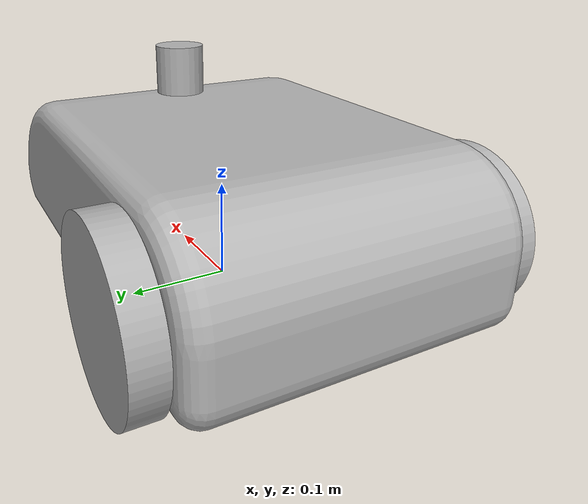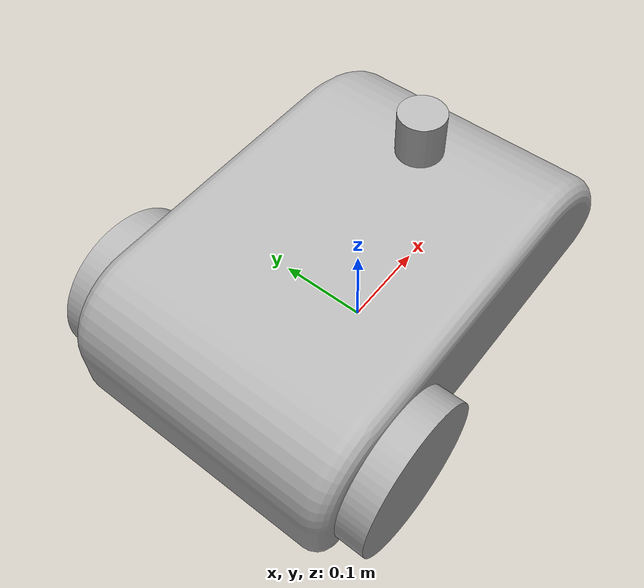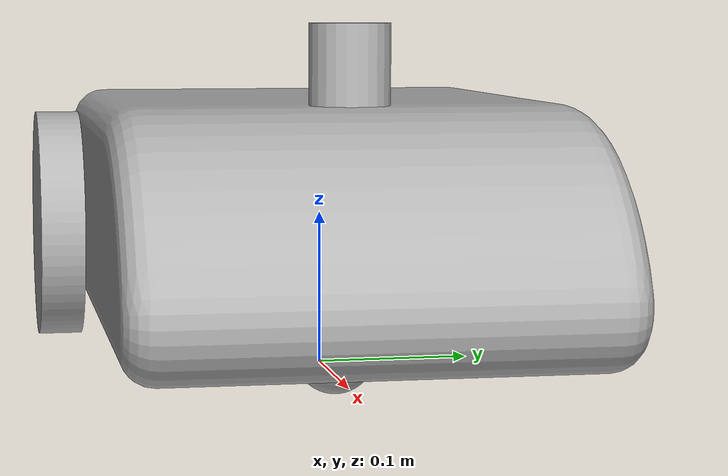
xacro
<?xml version="1.0" ?>
<robot name="mark1" xmlns:xacro="http://www.ros.org/wiki/xacro">

<xacro:include filename="$(find rover)/urdf/materials.xacro" />
<xacro:include filename="$(find rover)/urdf/mark1.trans" />
<xacro:include filename="$(find rover)/urdf/mark1.gazebo" />
<link name="base_link">
  <inertial>
    <origin rpy="0 0 0" xyz="-0.0012050685149422157 3.5154999461666345e-18 0.009678804506941602"/>
    <mass value="0.024011514237212494"/>
    <inertia ixx="2e-06" ixy="0.0" ixz="0.0" iyy="5e-06" iyz="0.0" izz="6e-06"/>
  </inertial>
  <visual>
    <origin rpy="0 0 0" xyz="0 0 0"/>
    <geometry>
      <mesh filename="package://rover/meshes/base_link.stl" scale="0.01 0.01 0.01"/>
    </geometry>
    <material name="silver"/>
  </visual>
  <collision>
    <origin rpy="0 0 0" xyz="0 0 0"/>
    <geometry>
      <mesh filename="package://rover/meshes/base_link.stl" scale="0.01 0.01 0.01"/>
    </geometry>
  </collision>
</link>

<link name="right_wheel_1">
  <inertial>
    <origin rpy="0 0 0" xyz="-2.2351741985060514e-10 -0.0015000000000000013 -2.980232206850619e-11"/>
    <mass value="0.0005742328715937561"/>
    <inertia ixx="0.0" ixy="0.0" ixz="0.0" iyy="0.0" iyz="0.0" izz="0.0"/>
  </inertial>
  <visual>
    <origin rpy="0 0 0" xyz="0.015 0.015 -0.008014"/>
    <geometry>
      <mesh filename="package://rover/meshes/right_wheel_1.stl" scale="0.01 0.01 0.01"/>
    </geometry>
    <material name="silver"/>
  </visual>
  <collision>
    <origin rpy="0 0 0" xyz="0.015 0.015 -0.008014"/>
    <geometry>
      <mesh filename="package://rover/meshes/right_wheel_1.stl" scale="0.01 0.01 0.01"/>
    </geometry>
  </collision>
</link>

<link name="left_wheel_1">
  <inertial>
    <origin rpy="0 0 0" xyz="-2.2351741985060514e-10 0.0015000000000000013 -2.980232206850619e-11"/>
    <mass value="0.0005742328715937561"/>
    <inertia ixx="0.0" ixy="0.0" ixz="0.0" iyy="0.0" iyz="-0.0" izz="0.0"/>
  </inertial>
  <visual>
    <origin rpy="0 0 0" xyz="0.015 -0.015 -0.008014"/>
    <geometry>
      <mesh filename="package://rover/meshes/left_wheel_1.stl" scale="0.01 0.01 0.01"/>
    </geometry>
    <material name="silver"/>
  </visual>
  <collision>
    <origin rpy="0 0 0" xyz="0.015 -0.015 -0.008014"/>
    <geometry>
      <mesh filename="package://rover/meshes/left_wheel_1.stl" scale="0.01 0.01 0.01"/>
    </geometry>
  </collision>
</link>

<link name="caster_wheel_1">
  <inertial>
    <origin rpy="0 0 0" xyz="0.012000475382979797 -0.0011000000000000003 4.336808689942018e-19"/>
    <mass value="6.230825429619756e-05"/>
    <inertia ixx="0.0" ixy="-0.0" ixz="0.0" iyy="0.0" iyz="0.0" izz="0.0"/>
  </inertial>
  <visual>
    <origin rpy="0 0 0" xyz="0.000877 -0.0 -0.002514"/>
    <geometry>
      <mesh filename="package://rover/meshes/caster_wheel_1.stl" scale="0.01 0.01 0.01"/>
    </geometry>
    <material name="silver"/>
  </visual>
  <collision>
    <origin rpy="0 0 0" xyz="0.000877 -0.0 -0.002514"/>
    <geometry>
      <mesh filename="package://rover/meshes/caster_wheel_1.stl" scale="0.01 0.01 0.01"/>
    </geometry>
  </collision>
</link>

<joint name="Rigid12" type="fixed">
  <origin rpy="0 0 0" xyz="-0.000877 0.0 0.002514"/>
  <parent link="base_link"/>
  <child link="caster_wheel_1"/>
</joint>

<joint name="Rev10" type="revolute">
  <axis xyz="0.0 -1.0 0.0"/>
  <limit effort="1000.0" lower="0.0" upper="0.548" velocity="0.5"/>
  <origin rpy="0 0 0" xyz="-0.015 -0.015 0.008014"/>
  <parent link="base_link"/>
  <child link="right_wheel_1"/>
</joint>

<joint name="Rev11" type="revolute">
  <axis xyz="0.0 -1.0 0.0"/>
  <limit effort="1000.0" lower="0.0" upper="0.548" velocity="0.5"/>
  <origin rpy="0 0 0" xyz="-0.015 0.015 0.008014"/>
  <parent link="base_link"/>
  <child link="left_wheel_1"/>
</joint>

<link name="sensor_laser">
    <inertial>
        <origin xyz="0 0 0" rpy="0 0 0"/>
        <mass value="0.01"/>
        <inertia ixx="0.1" ixy="-0.1" ixz="0.0" iyy="0.0" iyz="0.0" izz="0.0"/>
    </inertial>

    <visual>
        <origin xyz="0 0 0" rpy="0 0 0" />
        <geometry>
        <cylinder radius="0.025" length="0.05"/>
        </geometry>
        <material name="silver"/>
    </visual>

    <collision>
        <origin xyz="0 0 0" rpy="0 0 0"/>
        <geometry>
        <cylinder radius="0.05" length="0.1"/>
        </geometry>
    </collision>
  </link>

  <joint name="joint_sensor_laser" type="fixed">
    <origin xyz="0.1 0 0.2" rpy="0 0 0"/>
    <parent link="base_link"/>
    <child link="sensor_laser"/>
  </joint>

</robot>

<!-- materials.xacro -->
<robot name="mark1" xmlns:xacro="http://www.ros.org/wiki/xacro" >

<material name="silver">
  <color rgba="0.700 0.700 0.700 1.000"/>
</material>

</robot>

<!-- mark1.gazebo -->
<robot name="mark1" xmlns:xacro="http://www.ros.org/wiki/xacro" >

<xacro:property name="body_color" value="Gazebo/Silver" />

<gazebo>
  <plugin filename="libgazebo_ros_control.so" name="control"/>
</gazebo>
<gazebo reference="base_link">
  <material>${body_color}</material>
  <mu1>0.2</mu1>
  <mu2>0.2</mu2>
  <selfCollide>true</selfCollide>
  <gravity>true</gravity>
</gazebo>

<gazebo reference="right_wheel_1">
  <material>${body_color}</material>
  <mu1>0.2</mu1>
  <mu2>0.2</mu2>
  <selfCollide>true</selfCollide>
</gazebo>

<gazebo reference="left_wheel_1">
  <material>${body_color}</material>
  <mu1>0.2</mu1>
  <mu2>0.2</mu2>
  <selfCollide>true</selfCollide>
</gazebo>

<gazebo reference="caster_wheel_1">
  <material>${body_color}</material>
  <mu1>0.2</mu1>
  <mu2>0.2</mu2>
  <selfCollide>true</selfCollide>
</gazebo>

<gazebo>
    <plugin name="controller" filename="libgazebo_ros_planar_move.so">
      <commandTopic>cmd_vel</commandTopic>
      <odometryTopic>odom</odometryTopic>
      <odometryFrame>odom</odometryFrame>
      <odometryRate>20.0</odometryRate>
      <robotBaseFrame>base_link</robotBaseFrame>
    </plugin>
  </gazebo>

<gazebo reference="sensor_laser">
    <sensor type="ray" name="head_hokuyo_sensor">
      <pose>0 0 0 0 0 0</pose>
      <visualize>false</visualize>
      <update_rate>20</update_rate>
      <ray>
        <scan>
          <horizontal>
            <samples>720</samples>
            <resolution>1</resolution>
            <min_angle>-1.570796</min_angle>
            <max_angle>1.570796</max_angle>
          </horizontal>
        </scan>
        <range>
          <min>0.10</min>
          <max>10.0</max>
          <resolution>0.01</resolution>
        </range>
        <noise>
          <type>gaussian</type>
          <mean>0.0</mean>
          <stddev>0.01</stddev>
        </noise>
      </ray>
      <plugin name="gazebo_ros_head_hokuyo_controller" filename="libgazebo_ros_laser.so">
        <topicName>/m2wr/laser/scan</topicName>
        <frameName>sensor_laser</frameName>
      </plugin>
    </sensor>
  </gazebo>

</robot>
